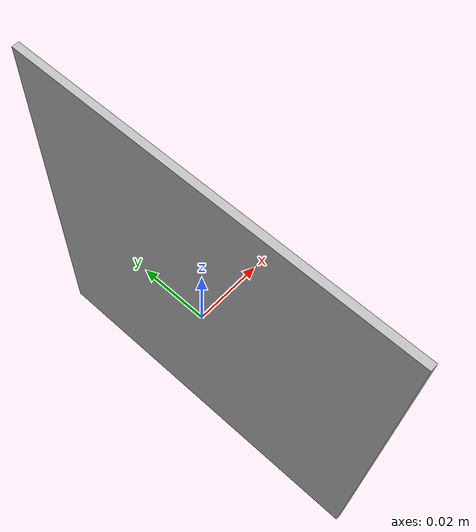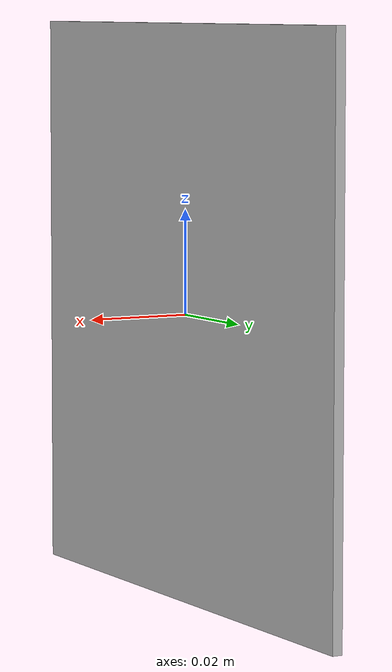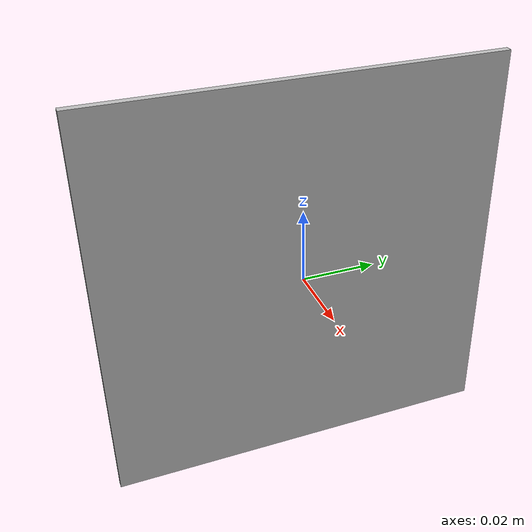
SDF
<?xml version="1.0"?>
<sdf version="1.6">
  <model name="Aruco13">
    <pose>0 0 0 0 0 0</pose>
    <static>true</static>
    <link name="link">
      <visual name="visual">
        <geometry>
          <mesh>
            <uri>model://Aruco13/meshes/aruco4x4_13.dae</uri>
            <scale>1 1 1</scale>
          </mesh>
        </geometry>
      </visual>
    </link>
  </model>
</sdf>
